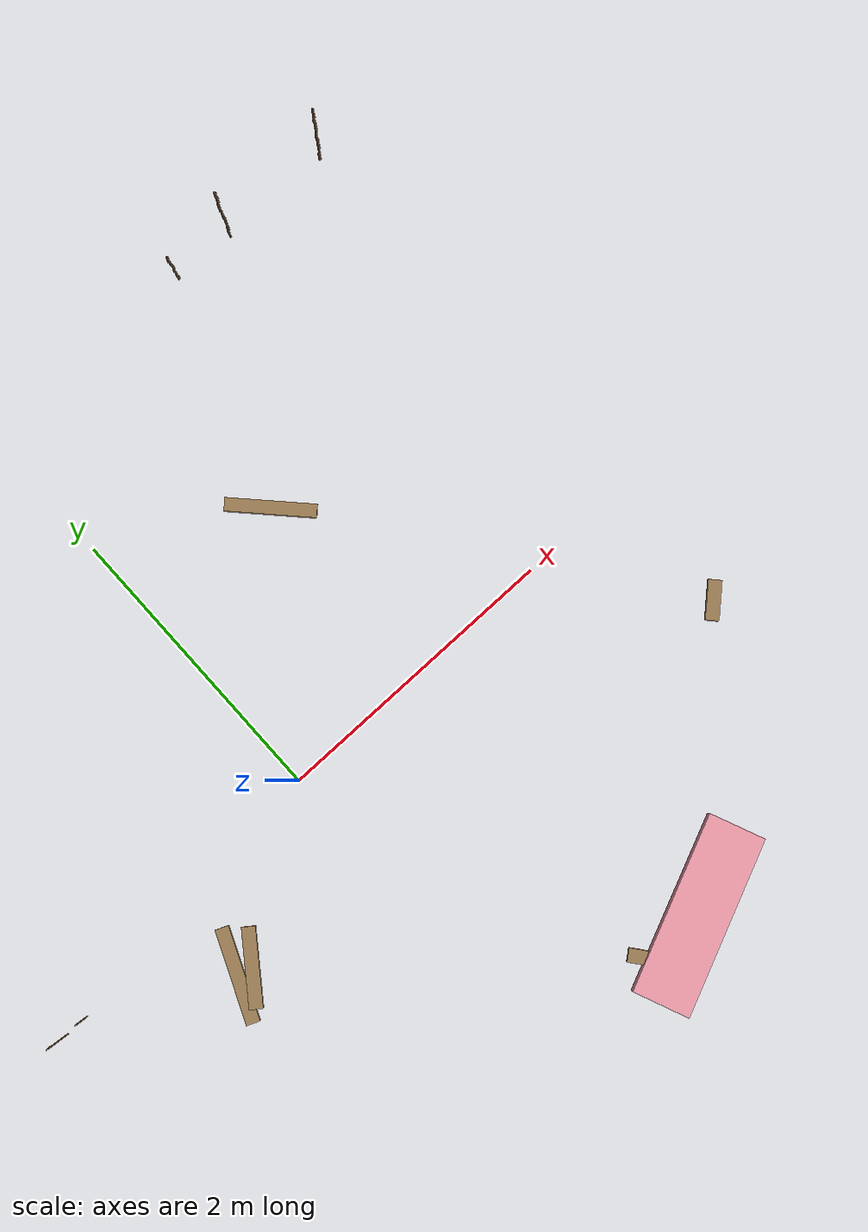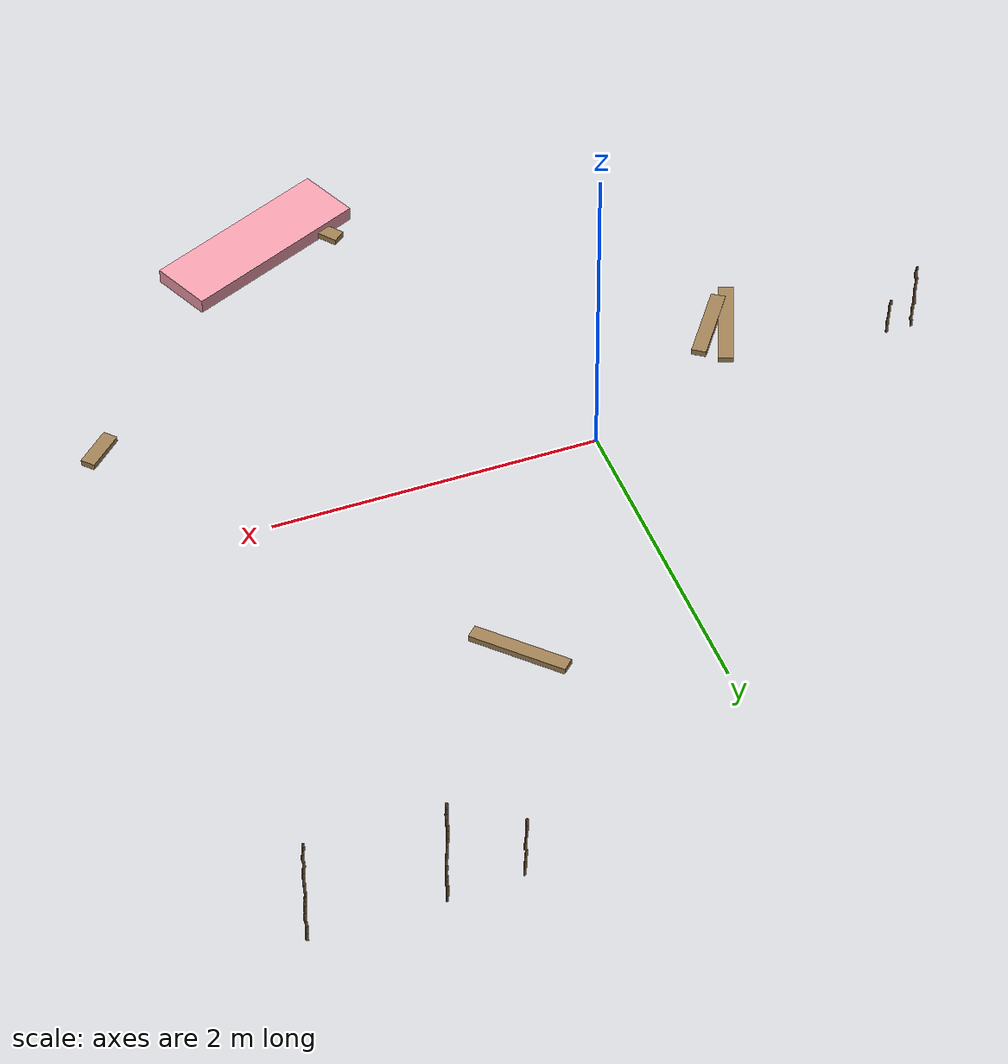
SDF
<sdf version="1.6">
 <world name="crawlspace">
  <model name="wood_scraps">
   <static>true</static>
   <link name="link">
    <visual name="scrap_0">
     <pose>-1.0761 -0.6413 0.0118 0 0 1.1778</pose>
     <geometry><box><size>0.6136 0.089 0.038</size></box></geometry>
     <material>
      <ambient>0.62 0.5 0.33 1</ambient>
      <diffuse>0.62 0.5 0.33 1</diffuse>
      <specular>0.05 0.05 0.05 1</specular>
     </material>
    </visual>
    <collision name="scrap_0">
     <pose>-1.0761 -0.6413 0.0118 0 0 1.1778</pose>
     <geometry><box><size>0.6136 0.089 0.038</size></box></geometry>
    </collision>
    <visual name="scrap_1">
     <pose>0.9008 -2.3071 0.003 0 0 2.2303</pose>
     <geometry><box><size>0.3133 0.089 0.038</size></box></geometry>
     <material>
      <ambient>0.62 0.5 0.33 1</ambient>
      <diffuse>0.62 0.5 0.33 1</diffuse>
      <specular>0.05 0.05 0.05 1</specular>
     </material>
    </visual>
    <collision name="scrap_1">
     <pose>0.9008 -2.3071 0.003 0 0 2.2303</pose>
     <geometry><box><size>0.3133 0.089 0.038</size></box></geometry>
    </collision>
    <visual name="scrap_2">
     <pose>2.7341 -0.9344 0.0187 0 0 0.7308</pose>
     <geometry><box><size>0.2646 0.089 0.038</size></box></geometry>
     <material>
      <ambient>0.62 0.5 0.33 1</ambient>
      <diffuse>0.62 0.5 0.33 1</diffuse>
      <specular>0.05 0.05 0.05 1</specular>
     </material>
    </visual>
    <collision name="scrap_2">
     <pose>2.7341 -0.9344 0.0187 0 0 0.7308</pose>
     <geometry><box><size>0.2646 0.089 0.038</size></box></geometry>
    </collision>
    <visual name="scrap_3">
     <pose>-0.9765 -0.6679 0.0174 0 0 0.9479</pose>
     <geometry><box><size>0.5027 0.089 0.038</size></box></geometry>
     <material>
      <ambient>0.62 0.5 0.33 1</ambient>
      <diffuse>0.62 0.5 0.33 1</diffuse>
      <specular>0.05 0.05 0.05 1</specular>
     </material>
    </visual>
    <collision name="scrap_3">
     <pose>-0.9765 -0.6679 0.0174 0 0 0.9479</pose>
     <geometry><box><size>0.5027 0.089 0.038</size></box></geometry>
    </collision>
    <visual name="scrap_4">
     <pose>1.0292 1.4296 0.0199 0 0 2.3293</pose>
     <geometry><box><size>0.6024 0.089 0.038</size></box></geometry>
     <material>
      <ambient>0.62 0.5 0.33 1</ambient>
      <diffuse>0.62 0.5 0.33 1</diffuse>
      <specular>0.05 0.05 0.05 1</specular>
     </material>
    </visual>
    <collision name="scrap_4">
     <pose>1.0292 1.4296 0.0199 0 0 2.3293</pose>
     <geometry><box><size>0.6024 0.089 0.038</size></box></geometry>
    </collision>
   </link>
  </model>
  <model name="fallen_insulation">
   <static>true</static>
   <link name="link">
    <visual name="batt">
     <pose>1.3 -2.3 0.0133 0 0 0.4</pose>
     <geometry><box><size>1.2 0.38 0.09</size></box></geometry>
     <material>
      <ambient>0.95 0.62 0.68 1</ambient>
      <diffuse>0.95 0.62 0.68 1</diffuse>
      <specular>0.05 0.05 0.05 1</specular>
     </material>
    </visual>
    <collision name="batt">
     <pose>1.3 -2.3 0.0133 0 0 0.4</pose>
     <geometry><box><size>1.2 0.38 0.09</size></box></geometry>
    </collision>
   </link>
  </model>
  <model name="termite_mud_tubes">
   <static>true</static>
   <link name="link">
    <visual name="tube_0_0">
     <pose>-2.0809 -0.204 0.0736 0 0 -1.5708</pose>
     <geometry><box><size>0.008 0.0155 0.0471</size></box></geometry>
     <material>
      <ambient>0.47 0.35 0.22 1</ambient>
      <diffuse>0.47 0.35 0.22 1</diffuse>
      <specular>0.05 0.05 0.05 1</specular>
     </material>
    </visual>
    <visual name="tube_0_1">
     <pose>-2.0771 -0.204 0.1152 0 0 -1.5708</pose>
     <geometry><box><size>0.008 0.0169 0.0362</size></box></geometry>
     <material>
      <ambient>0.47 0.35 0.22 1</ambient>
      <diffuse>0.47 0.35 0.22 1</diffuse>
      <specular>0.05 0.05 0.05 1</specular>
     </material>
    </visual>
    <visual name="tube_0_2">
     <pose>-2.0812 -0.204 0.1581 0 0 -1.5708</pose>
     <geometry><box><size>0.008 0.0151 0.0496</size></box></geometry>
     <material>
      <ambient>0.47 0.35 0.22 1</ambient>
      <diffuse>0.47 0.35 0.22 1</diffuse>
      <specular>0.05 0.05 0.05 1</specular>
     </material>
    </visual>
    <visual name="tube_0_3">
     <pose>-2.0842 -0.204 0.2028 0 0 -1.5708</pose>
     <geometry><box><size>0.008 0.0177 0.0398</size></box></geometry>
     <material>
      <ambient>0.47 0.35 0.22 1</ambient>
      <diffuse>0.47 0.35 0.22 1</diffuse>
      <specular>0.05 0.05 0.05 1</specular>
     </material>
    </visual>
    <visual name="tube_0_4">
     <pose>-2.0896 -0.204 0.2527 0 0 -1.5708</pose>
     <geometry><box><size>0.008 0.0172 0.0599</size></box></geometry>
     <material>
      <ambient>0.47 0.35 0.22 1</ambient>
      <diffuse>0.47 0.35 0.22 1</diffuse>
      <specular>0.05 0.05 0.05 1</specular>
     </material>
    </visual>
    <visual name="tube_0_5">
     <pose>-2.0911 -0.204 0.3067 0 0 -1.5708</pose>
     <geometry><box><size>0.008 0.0137 0.0481</size></box></geometry>
     <material>
      <ambient>0.47 0.35 0.22 1</ambient>
      <diffuse>0.47 0.35 0.22 1</diffuse>
      <specular>0.05 0.05 0.05 1</specular>
     </material>
    </visual>
    <visual name="tube_0_6">
     <pose>-2.0916 -0.204 0.3559 0 0 -1.5708</pose>
     <geometry><box><size>0.008 0.0161 0.0502</size></box></geometry>
     <material>
      <ambient>0.47 0.35 0.22 1</ambient>
      <diffuse>0.47 0.35 0.22 1</diffuse>
      <specular>0.05 0.05 0.05 1</specular>
     </material>
    </visual>
    <visual name="tube_0_7">
     <pose>-2.096 -0.204 0.4059 0 0 -1.5708</pose>
     <geometry><box><size>0.008 0.0166 0.0499</size></box></geometry>
     <material>
      <ambient>0.47 0.35 0.22 1</ambient>
      <diffuse>0.47 0.35 0.22 1</diffuse>
      <specular>0.05 0.05 0.05 1</specular>
     </material>
    </visual>
    <visual name="tube_0_8">
     <pose>-2.0903 -0.204 0.4606 0 0 -1.5708</pose>
     <geometry><box><size>0.008 0.0157 0.0595</size></box></geometry>
     <material>
      <ambient>0.47 0.35 0.22 1</ambient>
      <diffuse>0.47 0.35 0.22 1</diffuse>
      <specular>0.05 0.05 0.05 1</specular>
     </material>
    </visual>
    <visual name="tube_0_9">
     <pose>-2.0963 -0.204 0.5027 0 0 -1.5708</pose>
     <geometry><box><size>0.008 0.0128 0.0247</size></box></geometry>
     <material>
      <ambient>0.47 0.35 0.22 1</ambient>
      <diffuse>0.47 0.35 0.22 1</diffuse>
      <specular>0.05 0.05 0.05 1</specular>
     </material>
    </visual>
    <visual name="tube_1_0">
     <pose>-1.9224 -0.204 0.0791 0 0 -1.5708</pose>
     <geometry><box><size>0.008 0.0142 0.0582</size></box></geometry>
     <material>
      <ambient>0.47 0.35 0.22 1</ambient>
      <diffuse>0.47 0.35 0.22 1</diffuse>
      <specular>0.05 0.05 0.05 1</specular>
     </material>
    </visual>
    <visual name="tube_1_1">
     <pose>-1.9246 -0.204 0.1367 0 0 -1.5708</pose>
     <geometry><box><size>0.008 0.0153 0.0569</size></box></geometry>
     <material>
      <ambient>0.47 0.35 0.22 1</ambient>
      <diffuse>0.47 0.35 0.22 1</diffuse>
      <specular>0.05 0.05 0.05 1</specular>
     </material>
    </visual>
    <visual name="tube_1_2">
     <pose>-1.9298 -0.204 0.1867 0 0 -1.5708</pose>
     <geometry><box><size>0.008 0.0155 0.0431</size></box></geometry>
     <material>
      <ambient>0.47 0.35 0.22 1</ambient>
      <diffuse>0.47 0.35 0.22 1</diffuse>
      <specular>0.05 0.05 0.05 1</specular>
     </material>
    </visual>
    <visual name="tube_1_3">
     <pose>-1.9339 -0.204 0.2359 0 0 -1.5708</pose>
     <geometry><box><size>0.008 0.0133 0.0553</size></box></geometry>
     <material>
      <ambient>0.47 0.35 0.22 1</ambient>
      <diffuse>0.47 0.35 0.22 1</diffuse>
      <specular>0.05 0.05 0.05 1</specular>
     </material>
    </visual>
    <visual name="tube_1_4">
     <pose>-1.9395 -0.204 0.2818 0 0 -1.5708</pose>
     <geometry><box><size>0.008 0.015 0.0364</size></box></geometry>
     <material>
      <ambient>0.47 0.35 0.22 1</ambient>
      <diffuse>0.47 0.35 0.22 1</diffuse>
      <specular>0.05 0.05 0.05 1</specular>
     </material>
    </visual>
    <visual name="tube_2_0">
     <pose>1.6019 2.996 0.0261 0 0 -1.5708</pose>
     <geometry><box><size>0.008 0.0152 0.0545</size></box></geometry>
     <material>
      <ambient>0.47 0.35 0.22 1</ambient>
      <diffuse>0.47 0.35 0.22 1</diffuse>
      <specular>0.05 0.05 0.05 1</specular>
     </material>
    </visual>
    <visual name="tube_2_1">
     <pose>1.5977 2.996 0.0812 0 0 -1.5708</pose>
     <geometry><box><size>0.008 0.0154 0.0557</size></box></geometry>
     <material>
      <ambient>0.47 0.35 0.22 1</ambient>
      <diffuse>0.47 0.35 0.22 1</diffuse>
      <specular>0.05 0.05 0.05 1</specular>
     </material>
    </visual>
    <visual name="tube_2_2">
     <pose>1.5989 2.996 0.1296 0 0 -1.5708</pose>
     <geometry><box><size>0.008 0.0127 0.0412</size></box></geometry>
     <material>
      <ambient>0.47 0.35 0.22 1</ambient>
      <diffuse>0.47 0.35 0.22 1</diffuse>
      <specular>0.05 0.05 0.05 1</specular>
     </material>
    </visual>
    <visual name="tube_2_3">
     <pose>1.5941 2.996 0.1769 0 0 -1.5708</pose>
     <geometry><box><size>0.008 0.013 0.0533</size></box></geometry>
     <material>
      <ambient>0.47 0.35 0.22 1</ambient>
      <diffuse>0.47 0.35 0.22 1</diffuse>
      <specular>0.05 0.05 0.05 1</specular>
     </material>
    </visual>
    <visual name="tube_2_4">
     <pose>1.5994 2.996 0.2306 0 0 -1.5708</pose>
     <geometry><box><size>0.008 0.0146 0.0542</size></box></geometry>
     <material>
      <ambient>0.47 0.35 0.22 1</ambient>
      <diffuse>0.47 0.35 0.22 1</diffuse>
      <specular>0.05 0.05 0.05 1</specular>
     </material>
    </visual>
    <visual name="tube_2_5">
     <pose>1.5964 2.996 0.2789 0 0 -1.5708</pose>
     <geometry><box><size>0.008 0.0136 0.0424</size></box></geometry>
     <material>
      <ambient>0.47 0.35 0.22 1</ambient>
      <diffuse>0.47 0.35 0.22 1</diffuse>
      <specular>0.05 0.05 0.05 1</specular>
     </material>
    </visual>
    <visual name="tube_2_6">
     <pose>1.5925 2.996 0.3244 0 0 -1.5708</pose>
     <geometry><box><size>0.008 0.0127 0.0485</size></box></geometry>
     <material>
      <ambient>0.47 0.35 0.22 1</ambient>
      <diffuse>0.47 0.35 0.22 1</diffuse>
      <specular>0.05 0.05 0.05 1</specular>
     </material>
    </visual>
    <visual name="tube_2_7">
     <pose>1.5885 2.996 0.3705 0 0 -1.5708</pose>
     <geometry><box><size>0.008 0.0159 0.0437</size></box></geometry>
     <material>
      <ambient>0.47 0.35 0.22 1</ambient>
      <diffuse>0.47 0.35 0.22 1</diffuse>
      <specular>0.05 0.05 0.05 1</specular>
     </material>
    </visual>
    <visual name="tube_2_8">
     <pose>1.5918 2.996 0.4197 0 0 -1.5708</pose>
     <geometry><box><size>0.008 0.0149 0.0546</size></box></geometry>
     <material>
      <ambient>0.47 0.35 0.22 1</ambient>
      <diffuse>0.47 0.35 0.22 1</diffuse>
      <specular>0.05 0.05 0.05 1</specular>
     </material>
    </visual>
    <visual name="tube_3_0">
     <pose>2.0492 2.996 -0.0132 0 0 -1.5708</pose>
     <geometry><box><size>0.008 0.012 0.0404</size></box></geometry>
     <material>
      <ambient>0.47 0.35 0.22 1</ambient>
      <diffuse>0.47 0.35 0.22 1</diffuse>
      <specular>0.05 0.05 0.05 1</specular>
     </material>
    </visual>
    <visual name="tube_3_1">
     <pose>2.0472 2.996 0.0327 0 0 -1.5708</pose>
     <geometry><box><size>0.008 0.0139 0.0514</size></box></geometry>
     <material>
      <ambient>0.47 0.35 0.22 1</ambient>
      <diffuse>0.47 0.35 0.22 1</diffuse>
      <specular>0.05 0.05 0.05 1</specular>
     </material>
    </visual>
    <visual name="tube_3_2">
     <pose>2.0466 2.996 0.0746 0 0 -1.5708</pose>
     <geometry><box><size>0.008 0.0155 0.0324</size></box></geometry>
     <material>
      <ambient>0.47 0.35 0.22 1</ambient>
      <diffuse>0.47 0.35 0.22 1</diffuse>
      <specular>0.05 0.05 0.05 1</specular>
     </material>
    </visual>
    <visual name="tube_3_3">
     <pose>2.051 2.996 0.1116 0 0 -1.5708</pose>
     <geometry><box><size>0.008 0.016 0.0417</size></box></geometry>
     <material>
      <ambient>0.47 0.35 0.22 1</ambient>
      <diffuse>0.47 0.35 0.22 1</diffuse>
      <specular>0.05 0.05 0.05 1</specular>
     </material>
    </visual>
    <visual name="tube_3_4">
     <pose>2.0513 2.996 0.1511 0 0 -1.5708</pose>
     <geometry><box><size>0.008 0.0175 0.0372</size></box></geometry>
     <material>
      <ambient>0.47 0.35 0.22 1</ambient>
      <diffuse>0.47 0.35 0.22 1</diffuse>
      <specular>0.05 0.05 0.05 1</specular>
     </material>
    </visual>
    <visual name="tube_3_5">
     <pose>2.0525 2.996 0.1925 0 0 -1.5708</pose>
     <geometry><box><size>0.008 0.0124 0.0456</size></box></geometry>
     <material>
      <ambient>0.47 0.35 0.22 1</ambient>
      <diffuse>0.47 0.35 0.22 1</diffuse>
      <specular>0.05 0.05 0.05 1</specular>
     </material>
    </visual>
    <visual name="tube_3_6">
     <pose>2.0521 2.996 0.2377 0 0 -1.5708</pose>
     <geometry><box><size>0.008 0.0144 0.0447</size></box></geometry>
     <material>
      <ambient>0.47 0.35 0.22 1</ambient>
      <diffuse>0.47 0.35 0.22 1</diffuse>
      <specular>0.05 0.05 0.05 1</specular>
     </material>
    </visual>
    <visual name="tube_3_7">
     <pose>2.0531 2.996 0.2813 0 0 -1.5708</pose>
     <geometry><box><size>0.008 0.0152 0.0426</size></box></geometry>
     <material>
      <ambient>0.47 0.35 0.22 1</ambient>
      <diffuse>0.47 0.35 0.22 1</diffuse>
      <specular>0.05 0.05 0.05 1</specular>
     </material>
    </visual>
    <visual name="tube_3_8">
     <pose>2.0491 2.996 0.325 0 0 -1.5708</pose>
     <geometry><box><size>0.008 0.0146 0.0447</size></box></geometry>
     <material>
      <ambient>0.47 0.35 0.22 1</ambient>
      <diffuse>0.47 0.35 0.22 1</diffuse>
      <specular>0.05 0.05 0.05 1</specular>
     </material>
    </visual>
    <visual name="tube_3_9">
     <pose>2.0481 2.996 0.3769 0 0 -1.5708</pose>
     <geometry><box><size>0.008 0.0122 0.0591</size></box></geometry>
     <material>
      <ambient>0.47 0.35 0.22 1</ambient>
      <diffuse>0.47 0.35 0.22 1</diffuse>
      <specular>0.05 0.05 0.05 1</specular>
     </material>
    </visual>
    <visual name="tube_3_10">
     <pose>2.0485 2.996 0.4214 0 0 -1.5708</pose>
     <geometry><box><size>0.008 0.0123 0.0301</size></box></geometry>
     <material>
      <ambient>0.47 0.35 0.22 1</ambient>
      <diffuse>0.47 0.35 0.22 1</diffuse>
      <specular>0.05 0.05 0.05 1</specular>
     </material>
    </visual>
    <visual name="tube_3_11">
     <pose>2.0438 2.996 0.4529 0 0 -1.5708</pose>
     <geometry><box><size>0.008 0.0147 0.0328</size></box></geometry>
     <material>
      <ambient>0.47 0.35 0.22 1</ambient>
      <diffuse>0.47 0.35 0.22 1</diffuse>
      <specular>0.05 0.05 0.05 1</specular>
     </material>
    </visual>
    <visual name="tube_3_12">
     <pose>2.0436 2.996 0.4992 0 0 -1.5708</pose>
     <geometry><box><size>0.008 0.0148 0.0598</size></box></geometry>
     <material>
      <ambient>0.47 0.35 0.22 1</ambient>
      <diffuse>0.47 0.35 0.22 1</diffuse>
      <specular>0.05 0.05 0.05 1</specular>
     </material>
    </visual>
    <visual name="tube_3_13">
     <pose>2.0436 2.996 0.5506 0 0 -1.5708</pose>
     <geometry><box><size>0.008 0.0147 0.0431</size></box></geometry>
     <material>
      <ambient>0.47 0.35 0.22 1</ambient>
      <diffuse>0.47 0.35 0.22 1</diffuse>
      <specular>0.05 0.05 0.05 1</specular>
     </material>
    </visual>
    <visual name="tube_3_14">
     <pose>2.0484 2.996 0.598 0 0 -1.5708</pose>
     <geometry><box><size>0.008 0.0162 0.0518</size></box></geometry>
     <material>
      <ambient>0.47 0.35 0.22 1</ambient>
      <diffuse>0.47 0.35 0.22 1</diffuse>
      <specular>0.05 0.05 0.05 1</specular>
     </material>
    </visual>
    <visual name="tube_3_15">
     <pose>2.0502 2.996 0.6453 0 0 -1.5708</pose>
     <geometry><box><size>0.008 0.0175 0.0427</size></box></geometry>
     <material>
      <ambient>0.47 0.35 0.22 1</ambient>
      <diffuse>0.47 0.35 0.22 1</diffuse>
      <specular>0.05 0.05 0.05 1</specular>
     </material>
    </visual>
    <visual name="tube_3_16">
     <pose>2.047 2.996 0.6839 0 0 -1.5708</pose>
     <geometry><box><size>0.008 0.0157 0.0346</size></box></geometry>
     <material>
      <ambient>0.47 0.35 0.22 1</ambient>
      <diffuse>0.47 0.35 0.22 1</diffuse>
      <specular>0.05 0.05 0.05 1</specular>
     </material>
    </visual>
    <visual name="tube_3_17">
     <pose>2.0488 2.996 0.7256 0 0 -1.5708</pose>
     <geometry><box><size>0.008 0.0155 0.0488</size></box></geometry>
     <material>
      <ambient>0.47 0.35 0.22 1</ambient>
      <diffuse>0.47 0.35 0.22 1</diffuse>
      <specular>0.05 0.05 0.05 1</specular>
     </material>
    </visual>
    <visual name="tube_4_0">
     <pose>2.8497 2.996 0.0025 0 0 -1.5708</pose>
     <geometry><box><size>0.008 0.0168 0.0549</size></box></geometry>
     <material>
      <ambient>0.47 0.35 0.22 1</ambient>
      <diffuse>0.47 0.35 0.22 1</diffuse>
      <specular>0.05 0.05 0.05 1</specular>
     </material>
    </visual>
    <visual name="tube_4_1">
     <pose>2.849 2.996 0.0593 0 0 -1.5708</pose>
     <geometry><box><size>0.008 0.0172 0.0589</size></box></geometry>
     <material>
      <ambient>0.47 0.35 0.22 1</ambient>
      <diffuse>0.47 0.35 0.22 1</diffuse>
      <specular>0.05 0.05 0.05 1</specular>
     </material>
    </visual>
    <visual name="tube_4_2">
     <pose>2.8536 2.996 0.1145 0 0 -1.5708</pose>
     <geometry><box><size>0.008 0.0123 0.0515</size></box></geometry>
     <material>
      <ambient>0.47 0.35 0.22 1</ambient>
      <diffuse>0.47 0.35 0.22 1</diffuse>
      <specular>0.05 0.05 0.05 1</specular>
     </material>
    </visual>
    <visual name="tube_4_3">
     <pose>2.8568 2.996 0.169 0 0 -1.5708</pose>
     <geometry><box><size>0.008 0.0178 0.0574</size></box></geometry>
     <material>
      <ambient>0.47 0.35 0.22 1</ambient>
      <diffuse>0.47 0.35 0.22 1</diffuse>
      <specular>0.05 0.05 0.05 1</specular>
     </material>
    </visual>
    <visual name="tube_4_4">
     <pose>2.8543 2.996 0.2274 0 0 -1.5708</pose>
     <geometry><box><size>0.008 0.016 0.0594</size></box></geometry>
     <material>
      <ambient>0.47 0.35 0.22 1</ambient>
      <diffuse>0.47 0.35 0.22 1</diffuse>
      <specular>0.05 0.05 0.05 1</specular>
     </material>
    </visual>
    <visual name="tube_4_5">
     <pose>2.8554 2.996 0.2743 0 0 -1.5708</pose>
     <geometry><box><size>0.008 0.0175 0.0342</size></box></geometry>
     <material>
      <ambient>0.47 0.35 0.22 1</ambient>
      <diffuse>0.47 0.35 0.22 1</diffuse>
      <specular>0.05 0.05 0.05 1</specular>
     </material>
    </visual>
    <visual name="tube_4_6">
     <pose>2.8536 2.996 0.3093 0 0 -1.5708</pose>
     <geometry><box><size>0.008 0.0125 0.0358</size></box></geometry>
     <material>
      <ambient>0.47 0.35 0.22 1</ambient>
      <diffuse>0.47 0.35 0.22 1</diffuse>
      <specular>0.05 0.05 0.05 1</specular>
     </material>
    </visual>
    <visual name="tube_4_7">
     <pose>2.8501 2.996 0.3451 0 0 -1.5708</pose>
     <geometry><box><size>0.008 0.0126 0.0358</size></box></geometry>
     <material>
      <ambient>0.47 0.35 0.22 1</ambient>
      <diffuse>0.47 0.35 0.22 1</diffuse>
      <specular>0.05 0.05 0.05 1</specular>
     </material>
    </visual>
    <visual name="tube_4_8">
     <pose>2.8547 2.996 0.393 0 0 -1.5708</pose>
     <geometry><box><size>0.008 0.0148 0.06</size></box></geometry>
     <material>
      <ambient>0.47 0.35 0.22 1</ambient>
      <diffuse>0.47 0.35 0.22 1</diffuse>
      <specular>0.05 0.05 0.05 1</specular>
     </material>
    </visual>
    <visual name="tube_4_9">
     <pose>2.8571 2.996 0.4491 0 0 -1.5708</pose>
     <geometry><box><size>0.008 0.0151 0.0523</size></box></geometry>
     <material>
      <ambient>0.47 0.35 0.22 1</ambient>
      <diffuse>0.47 0.35 0.22 1</diffuse>
      <specular>0.05 0.05 0.05 1</specular>
     </material>
    </visual>
    <visual name="tube_4_10">
     <pose>2.8591 2.996 0.4966 0 0 -1.5708</pose>
     <geometry><box><size>0.008 0.0153 0.0427</size></box></geometry>
     <material>
      <ambient>0.47 0.35 0.22 1</ambient>
      <diffuse>0.47 0.35 0.22 1</diffuse>
      <specular>0.05 0.05 0.05 1</specular>
     </material>
    </visual>
    <visual name="tube_4_11">
     <pose>2.8574 2.996 0.537 0 0 -1.5708</pose>
     <geometry><box><size>0.008 0.0158 0.038</size></box></geometry>
     <material>
      <ambient>0.47 0.35 0.22 1</ambient>
      <diffuse>0.47 0.35 0.22 1</diffuse>
      <specular>0.05 0.05 0.05 1</specular>
     </material>
    </visual>
    <visual name="tube_4_12">
     <pose>2.8539 2.996 0.5804 0 0 -1.5708</pose>
     <geometry><box><size>0.008 0.0157 0.0488</size></box></geometry>
     <material>
      <ambient>0.47 0.35 0.22 1</ambient>
      <diffuse>0.47 0.35 0.22 1</diffuse>
      <specular>0.05 0.05 0.05 1</specular>
     </material>
    </visual>
    <visual name="tube_4_13">
     <pose>2.8584 2.996 0.6329 0 0 -1.5708</pose>
     <geometry><box><size>0.008 0.0159 0.0562</size></box></geometry>
     <material>
      <ambient>0.47 0.35 0.22 1</ambient>
      <diffuse>0.47 0.35 0.22 1</diffuse>
      <specular>0.05 0.05 0.05 1</specular>
     </material>
    </visual>
    <visual name="tube_4_14">
     <pose>2.8575 2.996 0.6771 0 0 -1.5708</pose>
     <geometry><box><size>0.008 0.0125 0.0321</size></box></geometry>
     <material>
      <ambient>0.47 0.35 0.22 1</ambient>
      <diffuse>0.47 0.35 0.22 1</diffuse>
      <specular>0.05 0.05 0.05 1</specular>
     </material>
    </visual>
    <visual name="tube_4_15">
     <pose>2.8545 2.996 0.709 0 0 -1.5708</pose>
     <geometry><box><size>0.008 0.0147 0.0317</size></box></geometry>
     <material>
      <ambient>0.47 0.35 0.22 1</ambient>
      <diffuse>0.47 0.35 0.22 1</diffuse>
      <specular>0.05 0.05 0.05 1</specular>
     </material>
    </visual>
    <visual name="tube_4_16">
     <pose>2.8561 2.996 0.7374 0 0 -1.5708</pose>
     <geometry><box><size>0.008 0.0137 0.0252</size></box></geometry>
     <material>
      <ambient>0.47 0.35 0.22 1</ambient>
      <diffuse>0.47 0.35 0.22 1</diffuse>
      <specular>0.05 0.05 0.05 1</specular>
     </material>
    </visual>
   </link>
  </model>
 </world>
</sdf>
